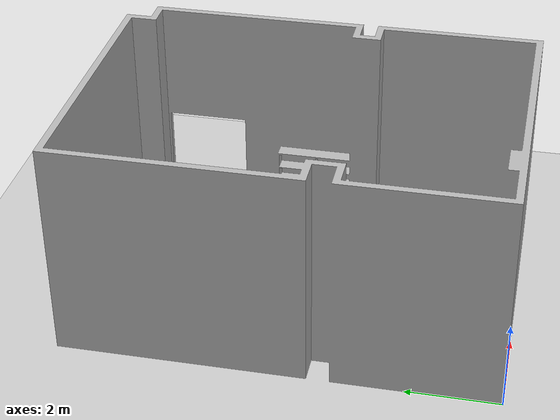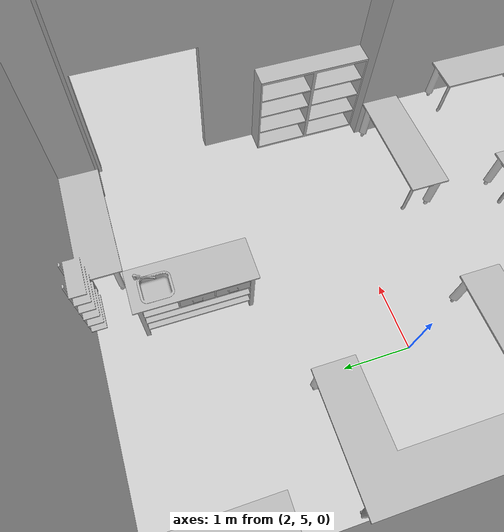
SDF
<sdf version="1.3">
 <world name="default">
  <light name="sun" type="directional">
   <pose>0.000000 0.000000 10.000000 0.000000 0.000000 0.000000</pose>
   <diffuse>0.800000 0.800000 0.800000 1.000000</diffuse>
   <specular>0.100000 0.100000 0.100000 1.000000</specular>
   <attenuation>
    <range>1000.000000</range>
    <constant>0.900000</constant>
    <linear>0.010000</linear>
    <quadratic>0.001000</quadratic>
   </attenuation>
   <direction>-0.500000 0.500000 -1.000000</direction>
  </light>
  <model name="ground_plane">
   <static>1</static>
   <link name="link">
    <collision name="collision">
     <geometry>
      <plane><normal>0.000000 0.000000 1.000000</normal><size>100.000000 100.000000</size></plane>
     </geometry>
     <surface><friction><ode><mu>100.000000</mu><mu2>50.000000</mu2></ode></friction></surface>
    </collision>
    <visual name="visual">
     <cast_shadows>0</cast_shadows>
     <geometry>
      <plane><normal>0.000000 0.000000 1.000000</normal><size>100.000000 100.000000</size></plane>
     </geometry>
     <material>
      <script><uri>file://media/materials/scripts/gazebo.material</uri><name>Gazebo/Grey</name></script>
     </material>
    </visual>
    <velocity_decay><linear>0.000000</linear><angular>0.000000</angular></velocity_decay>
   </link>
  </model>
  <physics type="ode">
   <update_rate>1000.000000</update_rate>
   <gravity>0.000000 0.000000 -9.800000</gravity>
  </physics>
  <scene>
   <ambient>0.200000 0.200000 0.200000 1.000000</ambient>
   <background>0.700000 0.700000 0.700000 1.000000</background>
   <shadows>1</shadows>
  </scene>
  <model name="kitchen_gazebo">
   <link name="base_link">
    <inertial>
     <pose>2.832790 4.836380 2.385820 0.000000 0.000000 0.000000</pose>
     <mass>24862.500000</mass>
     <inertia>
      <ixx>343870.000000</ixx>
      <ixy>-7565.990000</ixy>
      <ixz>-1978.630000</ixz>
      <iyy>227982.000000</iyy>
      <iyz>-3896.310000</iyz>
      <izz>474861.000000</izz>
     </inertia>
    </inertial>
    <collision name="base_link_geom">
     <geometry>
      <mesh>
       <scale>1.000000 1.000000 1.000000</scale>
       <uri>/home/cecilialiu/ros/kitchen_gazebo/meshes/base_link.STL</uri>
      </mesh>
     </geometry>
    </collision>
    <collision name="base_link_geom_counter_sink">
     <geometry>
      <mesh>
       <scale>1.000000 1.000000 1.000000</scale>
       <uri>/home/cecilialiu/ros/kitchen_gazebo/meshes/counter_sink.STL</uri>
      </mesh>
     </geometry>
    </collision>
    <collision name="base_link_geom_kitchen_counter">
     <geometry>
      <mesh>
       <scale>1.000000 1.000000 1.000000</scale>
       <uri>/home/cecilialiu/ros/kitchen_gazebo/meshes/kitchen_counter.STL</uri>
      </mesh>
     </geometry>
    </collision>
    <collision name="base_link_geom_water_pipe">
     <geometry>
      <mesh>
       <scale>1.000000 1.000000 1.000000</scale>
       <uri>/home/cecilialiu/ros/kitchen_gazebo/meshes/water_pipe.STL</uri>
      </mesh>
     </geometry>
    </collision>
    <visual name="base_link_visual">
     <geometry>
      <mesh>
       <scale>1.000000 1.000000 1.000000</scale>
       <uri>/home/cecilialiu/ros/kitchen_gazebo/meshes/base_link.STL</uri>
      </mesh>
     </geometry>
    </visual>
    <visual name="base_link_visualcounter_sink">
     <geometry>
      <mesh>
       <scale>1.000000 1.000000 1.000000</scale>
       <uri>/home/cecilialiu/ros/kitchen_gazebo/meshes/counter_sink.STL</uri>
      </mesh>
     </geometry>
    </visual>
    <visual name="base_link_visualkitchen_counter">
     <geometry>
      <mesh>
       <scale>1.000000 1.000000 1.000000</scale>
       <uri>/home/cecilialiu/ros/kitchen_gazebo/meshes/kitchen_counter.STL</uri>
      </mesh>
     </geometry>
    </visual>
    <visual name="base_link_visualwater_pipe">
     <geometry>
      <mesh>
       <scale>1.000000 1.000000 1.000000</scale>
       <uri>/home/cecilialiu/ros/kitchen_gazebo/meshes/water_pipe.STL</uri>
      </mesh>
     </geometry>
    </visual>
    <velocity_decay><linear>0.000000</linear><angular>0.000000</angular></velocity_decay>
   </link>
   <link name="drawer_left">
    <inertial>
     <pose>2.446800 1.637400 0.741348 0.000000 0.000000 0.000000</pose>
     <mass>9.477510</mass>
     <inertia>
      <ixx>0.315268</ixx>
      <ixy>-0.000000</ixy>
      <ixz>0.000192</ixz>
      <iyy>0.410596</iyy>
      <iyz>-0.000000</iyz>
      <izz>0.656397</izz>
     </inertia>
    </inertial>
    <collision name="drawer_left_geom">
     <geometry>
      <mesh>
       <scale>1.000000 1.000000 1.000000</scale>
       <uri>/home/cecilialiu/ros/kitchen_gazebo/meshes/drawer_left.STL</uri>
      </mesh>
     </geometry>
    </collision>
    <visual name="drawer_left_visual">
     <geometry>
      <mesh>
       <scale>1.000000 1.000000 1.000000</scale>
       <uri>/home/cecilialiu/ros/kitchen_gazebo/meshes/drawer_left.STL</uri>
      </mesh>
     </geometry>
    </visual>
    <velocity_decay><linear>0.000000</linear><angular>0.000000</angular></velocity_decay>
   </link>
   <joint name="drawer_left" type="prismatic">
    <child>drawer_left</child>
    <parent>base_link</parent>
    <axis>
     <xyz>1.000000 0.000000 0.000000</xyz>
     <limit>
      <lower>0.000000</lower>
      <upper>0.550000</upper>
      <effort>1000.000000</effort>
      <velocity>0.500000</velocity>
     </limit>
    </axis>
   </joint>
   <link name="drawer_right">
    <inertial>
     <pose>2.446800 2.137400 0.741348 0.000000 0.000000 0.000000</pose>
     <mass>9.477510</mass>
     <inertia>
      <ixx>0.315268</ixx>
      <ixy>-0.000000</ixy>
      <ixz>0.000192</ixz>
      <iyy>0.410596</iyy>
      <iyz>-0.000000</iyz>
      <izz>0.656397</izz>
     </inertia>
    </inertial>
    <collision name="drawer_right_geom">
     <geometry>
      <mesh>
       <scale>1.000000 1.000000 1.000000</scale>
       <uri>/home/cecilialiu/ros/kitchen_gazebo/meshes/drawer_right.STL</uri>
      </mesh>
     </geometry>
    </collision>
    <visual name="drawer_right_visual">
     <geometry>
      <mesh>
       <scale>1.000000 1.000000 1.000000</scale>
       <uri>/home/cecilialiu/ros/kitchen_gazebo/meshes/drawer_right.STL</uri>
      </mesh>
     </geometry>
    </visual>
    <velocity_decay><linear>0.000000</linear><angular>0.000000</angular></velocity_decay>
   </link>
   <joint name="drawer_right" type="prismatic">
    <child>drawer_right</child>
    <parent>base_link</parent>
    <axis>
     <xyz>1.000000 0.000000 0.000000</xyz>
     <limit>
      <lower>0.000000</lower>
      <upper>0.550000</upper>
      <effort>1000.000000</effort>
      <velocity>0.500000</velocity>
     </limit>
    </axis>
   </joint>
   <static>0</static>
  </model>
 </world>
</sdf>
